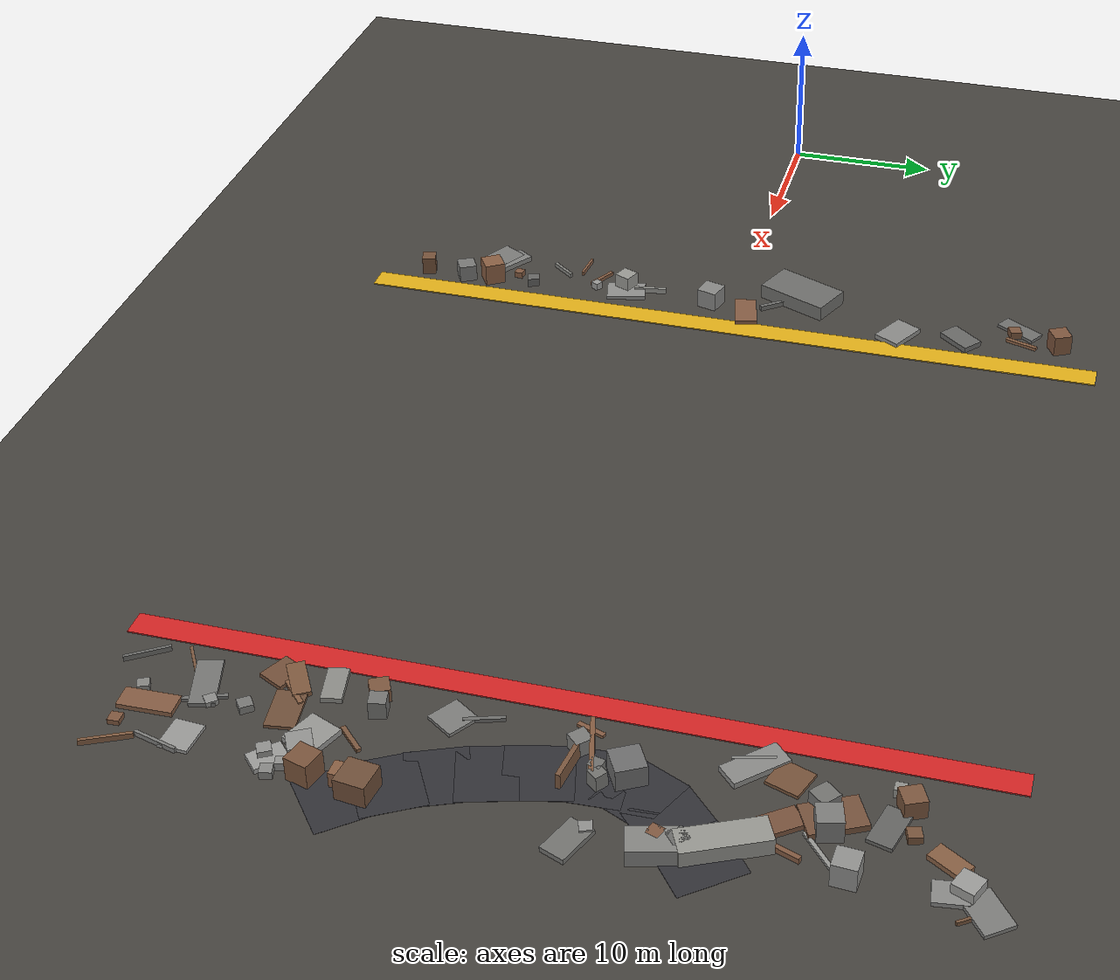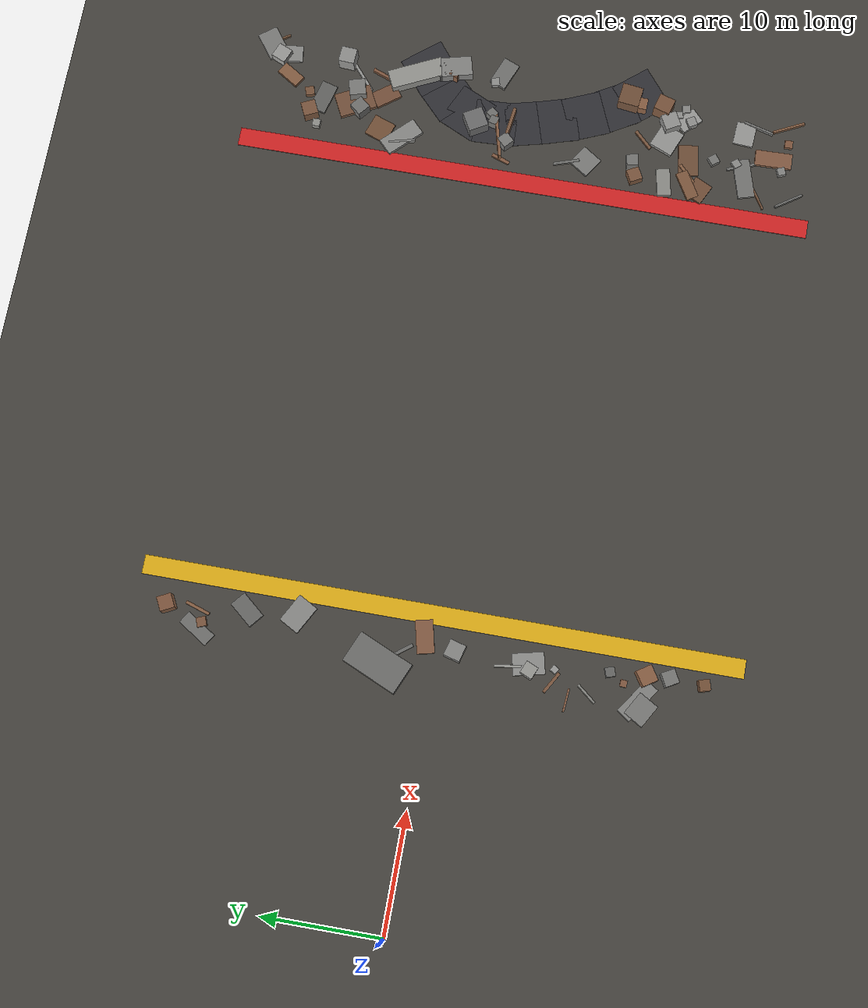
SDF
<sdf version="1.6">
 <world name="navitas_arena">
  <model name="ground_plane">
   <static>true</static>
   <link name="link">
    <collision name="collision">
     <geometry><plane><normal>0 0 1</normal><size>400 400</size></plane></geometry>
     <surface><friction><ode><mu>0.820</mu><mu2>0.820</mu2></ode></friction></surface>
    </collision>
    <visual name="visual">
     <cast_shadows>false</cast_shadows>
     <geometry><plane><normal>0 0 1</normal><size>400 400</size></plane></geometry>
     <material><ambient>0.280 0.270 0.250 1</ambient><diffuse>0.280 0.270 0.250 1</diffuse></material>
    </visual>
   </link>
  </model>
  <model name="brd_orta_E">
   <static>true</static>
   <pose>25.800 0.000 0.040 0 0 0.000</pose>
   <link name="link">
    <collision name="col"><geometry><box><size>1.600 50.000 0.080</size></box></geometry></collision>
    <visual name="vis">
     <geometry><box><size>1.600 50.000 0.080</size></box></geometry>
     <material><ambient>0.90 0.70 0.10 1</ambient><diffuse>0.90 0.70 0.10 1</diffuse></material>
    </visual>
   </link>
  </model>
  <model name="blk_orta_3_1_3">
   <static>true</static>
   <pose>21.097 4.455 0.500 0 0 1.163</pose>
   <link name="link">
    <collision name="col"><geometry><box><size>4.969 2.766 1.000</size></box></geometry></collision>
    <visual name="vis">
     <geometry><box><size>4.969 2.766 1.000</size></box></geometry>
     <material><ambient>0.44 0.44 0.43 1</ambient><diffuse>0.44 0.44 0.43 1</diffuse></material>
    </visual>
   </link>
  </model>
  <model name="deb_orta_9">
   <static>true</static>
   <pose>22.989 19.816 0.109 0 0 1.255</pose>
   <link name="link">
    <collision name="col"><geometry><box><size>2.165 0.266 0.217</size></box></geometry></collision>
    <visual name="vis">
     <geometry><box><size>2.165 0.266 0.217</size></box></geometry>
     <material><ambient>0.54 0.38 0.27 1</ambient><diffuse>0.54 0.38 0.27 1</diffuse></material>
    </visual>
   </link>
  </model>
  <model name="deb_orta_18">
   <static>true</static>
   <pose>22.705 -5.974 0.182 0 0 1.719</pose>
   <link name="link">
    <collision name="col"><geometry><box><size>2.216 0.202 0.365</size></box></geometry></collision>
    <visual name="vis">
     <geometry><box><size>2.216 0.202 0.365</size></box></geometry>
     <material><ambient>0.61 0.61 0.59 1</ambient><diffuse>0.61 0.61 0.59 1</diffuse></material>
    </visual>
   </link>
  </model>
  <model name="deb_orta_24">
   <static>true</static>
   <pose>21.910 19.250 0.246 0 0 0.372</pose>
   <link name="link">
    <collision name="col"><geometry><box><size>0.781 0.781 0.492</size></box></geometry></collision>
    <visual name="vis">
     <geometry><box><size>0.781 0.781 0.492</size></box></geometry>
     <material><ambient>0.50 0.35 0.25 1</ambient><diffuse>0.50 0.35 0.25 1</diffuse></material>
    </visual>
   </link>
  </model>
  <model name="deb_orta_30">
   <static>true</static>
   <pose>23.120 -1.546 0.655 0 0 1.302</pose>
   <link name="link">
    <collision name="col"><geometry><box><size>1.401 1.401 1.310</size></box></geometry></collision>
    <visual name="vis">
     <geometry><box><size>1.401 1.401 1.310</size></box></geometry>
     <material><ambient>0.54 0.54 0.53 1</ambient><diffuse>0.54 0.54 0.53 1</diffuse></material>
    </visual>
   </link>
  </model>
  <model name="deb_orta_58">
   <static>true</static>
   <pose>21.587 -12.601 0.144 0 0 0.895</pose>
   <link name="link">
    <collision name="col"><geometry><box><size>1.929 0.205 0.289</size></box></geometry></collision>
    <visual name="vis">
     <geometry><box><size>1.929 0.205 0.289</size></box></geometry>
     <material><ambient>0.53 0.53 0.51 1</ambient><diffuse>0.53 0.53 0.51 1</diffuse></material>
    </visual>
   </link>
  </model>
  <model name="deb_orta_77">
   <static>true</static>
   <pose>23.777 -17.120 0.743 0 0 2.150</pose>
   <link name="link">
    <collision name="col"><geometry><box><size>1.371 1.371 1.485</size></box></geometry></collision>
    <visual name="vis">
     <geometry><box><size>1.371 1.371 1.485</size></box></geometry>
     <material><ambient>0.55 0.38 0.27 1</ambient><diffuse>0.55 0.38 0.27 1</diffuse></material>
    </visual>
   </link>
  </model>
  <model name="deb_orta_91">
   <static>true</static>
   <pose>23.874 1.089 0.187 0 0 0.233</pose>
   <link name="link">
    <collision name="col"><geometry><box><size>2.739 1.456 0.375</size></box></geometry></collision>
    <visual name="vis">
     <geometry><box><size>2.739 1.456 0.375</size></box></geometry>
     <material><ambient>0.53 0.37 0.27 1</ambient><diffuse>0.53 0.37 0.27 1</diffuse></material>
    </visual>
   </link>
  </model>
  <model name="deb_orta_94">
   <static>true</static>
   <pose>23.519 15.789 0.183 0 0 0.878</pose>
   <link name="link">
    <collision name="col"><geometry><box><size>2.447 1.444 0.366</size></box></geometry></collision>
    <visual name="vis">
     <geometry><box><size>2.447 1.444 0.366</size></box></geometry>
     <material><ambient>0.42 0.42 0.41 1</ambient><diffuse>0.42 0.42 0.41 1</diffuse></material>
    </visual>
   </link>
  </model>
  <model name="deb_orta_96">
   <static>true</static>
   <pose>23.650 -14.196 0.288 0 0 0.324</pose>
   <link name="link">
    <collision name="col"><geometry><box><size>0.787 0.787 0.575</size></box></geometry></collision>
    <visual name="vis">
     <geometry><box><size>0.787 0.787 0.575</size></box></geometry>
     <material><ambient>0.41 0.41 0.40 1</ambient><diffuse>0.41 0.41 0.40 1</diffuse></material>
    </visual>
   </link>
  </model>
  <model name="deb_orta_99">
   <static>true</static>
   <pose>23.845 -21.818 0.626 0 0 1.858</pose>
   <link name="link">
    <collision name="col"><geometry><box><size>0.919 0.919 1.252</size></box></geometry></collision>
    <visual name="vis">
     <geometry><box><size>0.919 0.919 1.252</size></box></geometry>
     <material><ambient>0.47 0.33 0.23 1</ambient><diffuse>0.47 0.33 0.23 1</diffuse></material>
    </visual>
   </link>
  </model>
  <model name="deb_orta_123">
   <static>true</static>
   <pose>22.331 2.882 0.167 0 0 2.226</pose>
   <link name="link">
    <collision name="col"><geometry><box><size>2.357 0.276 0.334</size></box></geometry></collision>
    <visual name="vis">
     <geometry><box><size>2.357 0.276 0.334</size></box></geometry>
     <material><ambient>0.43 0.43 0.42 1</ambient><diffuse>0.43 0.43 0.42 1</diffuse></material>
    </visual>
   </link>
  </model>
  <model name="deb_orta_126">
   <static>true</static>
   <pose>22.933 -15.426 0.214 0 0 3.069</pose>
   <link name="link">
    <collision name="col"><geometry><box><size>0.551 0.551 0.427</size></box></geometry></collision>
    <visual name="vis">
     <geometry><box><size>0.551 0.551 0.427</size></box></geometry>
     <material><ambient>0.52 0.36 0.26 1</ambient><diffuse>0.52 0.36 0.26 1</diffuse></material>
    </visual>
   </link>
  </model>
  <model name="deb_orta_131">
   <static>true</static>
   <pose>21.089 -17.134 0.179 0 0 1.045</pose>
   <link name="link">
    <collision name="col"><geometry><box><size>1.829 2.114 0.359</size></box></geometry></collision>
    <visual name="vis">
     <geometry><box><size>1.829 2.114 0.359</size></box></geometry>
     <material><ambient>0.49 0.49 0.48 1</ambient><diffuse>0.49 0.49 0.48 1</diffuse></material>
    </visual>
   </link>
  </model>
  <model name="deb_orta_134">
   <static>true</static>
   <pose>23.069 -9.728 0.239 0 0 2.543</pose>
   <link name="link">
    <collision name="col"><geometry><box><size>0.538 0.538 0.479</size></box></geometry></collision>
    <visual name="vis">
     <geometry><box><size>0.538 0.538 0.479</size></box></geometry>
     <material><ambient>0.61 0.61 0.60 1</ambient><diffuse>0.61 0.61 0.60 1</diffuse></material>
    </visual>
   </link>
  </model>
  <model name="deb_orta_135">
   <static>true</static>
   <pose>22.893 22.286 0.680 0 0 0.474</pose>
   <link name="link">
    <collision name="col"><geometry><box><size>1.216 1.216 1.361</size></box></geometry></collision>
    <visual name="vis">
     <geometry><box><size>1.216 1.216 1.361</size></box></geometry>
     <material><ambient>0.51 0.35 0.25 1</ambient><diffuse>0.51 0.35 0.25 1</diffuse></material>
    </visual>
   </link>
  </model>
  <model name="deb_orta_137">
   <static>true</static>
   <pose>20.813 -11.068 0.148 0 0 3.054</pose>
   <link name="link">
    <collision name="col"><geometry><box><size>1.906 0.152 0.297</size></box></geometry></collision>
    <visual name="vis">
     <geometry><box><size>1.906 0.152 0.297</size></box></geometry>
     <material><ambient>0.53 0.37 0.27 1</ambient><diffuse>0.53 0.37 0.27 1</diffuse></material>
    </visual>
   </link>
  </model>
  <model name="deb_orta_150">
   <static>true</static>
   <pose>23.906 11.586 0.172 0 0 2.644</pose>
   <link name="link">
    <collision name="col"><geometry><box><size>2.581 1.828 0.345</size></box></geometry></collision>
    <visual name="vis">
     <geometry><box><size>2.581 1.828 0.345</size></box></geometry>
     <material><ambient>0.55 0.55 0.54 1</ambient><diffuse>0.55 0.55 0.54 1</diffuse></material>
    </visual>
   </link>
  </model>
  <model name="deb_orta_152">
   <static>true</static>
   <pose>21.794 -16.767 0.174 0 0 2.541</pose>
   <link name="link">
    <collision name="col"><geometry><box><size>3.456 1.294 0.348</size></box></geometry></collision>
    <visual name="vis">
     <geometry><box><size>3.456 1.294 0.348</size></box></geometry>
     <material><ambient>0.52 0.52 0.51 1</ambient><diffuse>0.52 0.52 0.51 1</diffuse></material>
    </visual>
   </link>
  </model>
  <model name="deb_orta_164">
   <static>true</static>
   <pose>22.003 -9.675 0.126 0 0 2.612</pose>
   <link name="link">
    <collision name="col"><geometry><box><size>1.997 0.253 0.251</size></box></geometry></collision>
    <visual name="vis">
     <geometry><box><size>1.997 0.253 0.251</size></box></geometry>
     <material><ambient>0.50 0.35 0.25 1</ambient><diffuse>0.50 0.35 0.25 1</diffuse></material>
    </visual>
   </link>
  </model>
  <model name="deb_orta_166">
   <static>true</static>
   <pose>23.960 -19.000 0.569 0 0 0.499</pose>
   <link name="link">
    <collision name="col"><geometry><box><size>1.185 1.185 1.138</size></box></geometry></collision>
    <visual name="vis">
     <geometry><box><size>1.185 1.185 1.138</size></box></geometry>
     <material><ambient>0.48 0.48 0.47 1</ambient><diffuse>0.48 0.48 0.47 1</diffuse></material>
    </visual>
   </link>
  </model>
  <model name="deb_orta_168">
   <static>true</static>
   <pose>23.183 -7.585 0.124 0 0 1.797</pose>
   <link name="link">
    <collision name="col"><geometry><box><size>2.626 1.812 0.248</size></box></geometry></collision>
    <visual name="vis">
     <geometry><box><size>2.626 1.812 0.248</size></box></geometry>
     <material><ambient>0.57 0.57 0.56 1</ambient><diffuse>0.57 0.57 0.56 1</diffuse></material>
    </visual>
   </link>
  </model>
  <model name="deb_orta_172">
   <static>true</static>
   <pose>21.319 19.522 0.103 0 0 1.007</pose>
   <link name="link">
    <collision name="col"><geometry><box><size>2.890 1.153 0.207</size></box></geometry></collision>
    <visual name="vis">
     <geometry><box><size>2.890 1.153 0.207</size></box></geometry>
     <material><ambient>0.45 0.45 0.44 1</ambient><diffuse>0.45 0.45 0.44 1</diffuse></material>
    </visual>
   </link>
  </model>
  <model name="deb_orta_189">
   <static>true</static>
   <pose>22.607 -7.715 0.598 0 0 1.163</pose>
   <link name="link">
    <collision name="col"><geometry><box><size>1.089 1.089 1.196</size></box></geometry></collision>
    <visual name="vis">
     <geometry><box><size>1.089 1.089 1.196</size></box></geometry>
     <material><ambient>0.61 0.61 0.59 1</ambient><diffuse>0.61 0.61 0.59 1</diffuse></material>
    </visual>
   </link>
  </model>
  <model name="brd_zor_W">
   <static>true</static>
   <pose>64.200 0.000 0.040 0 0 0.000</pose>
   <link name="link">
    <collision name="col"><geometry><box><size>1.600 50.000 0.080</size></box></geometry></collision>
    <visual name="vis">
     <geometry><box><size>1.600 50.000 0.080</size></box></geometry>
     <material><ambient>0.85 0.15 0.15 1</ambient><diffuse>0.85 0.15 0.15 1</diffuse></material>
    </visual>
   </link>
  </model>
  <model name="road_zor_1_6">
   <static>true</static>
   <pose>74.001 -9.036 0.040 0 0 2.261</pose>
   <link name="link">
    <collision name="col"><geometry><box><size>3.588 4.000 0.020</size></box></geometry></collision>
    <visual name="vis">
     <geometry><box><size>3.588 4.000 0.020</size></box></geometry>
     <material><ambient>0.20 0.20 0.22 1</ambient><diffuse>0.20 0.20 0.22 1</diffuse></material>
    </visual>
   </link>
  </model>
  <model name="road_zor_1_7">
   <static>true</static>
   <pose>72.464 -6.833 0.040 0 0 2.099</pose>
   <link name="link">
    <collision name="col"><geometry><box><size>3.601 4.000 0.020</size></box></geometry></collision>
    <visual name="vis">
     <geometry><box><size>3.601 4.000 0.020</size></box></geometry>
     <material><ambient>0.20 0.20 0.22 1</ambient><diffuse>0.20 0.20 0.22 1</diffuse></material>
    </visual>
   </link>
  </model>
  <model name="road_zor_1_8">
   <static>true</static>
   <pose>71.287 -4.500 0.040 0 0 1.974</pose>
   <link name="link">
    <collision name="col"><geometry><box><size>3.437 4.000 0.020</size></box></geometry></collision>
    <visual name="vis">
     <geometry><box><size>3.437 4.000 0.020</size></box></geometry>
     <material><ambient>0.20 0.20 0.22 1</ambient><diffuse>0.20 0.20 0.22 1</diffuse></material>
    </visual>
   </link>
  </model>
  <model name="road_zor_1_9">
   <static>true</static>
   <pose>70.440 -2.167 0.040 0 0 1.862</pose>
   <link name="link">
    <collision name="col"><geometry><box><size>3.336 4.000 0.020</size></box></geometry></collision>
    <visual name="vis">
     <geometry><box><size>3.336 4.000 0.020</size></box></geometry>
     <material><ambient>0.20 0.20 0.22 1</ambient><diffuse>0.20 0.20 0.22 1</diffuse></material>
    </visual>
   </link>
  </model>
  <model name="road_zor_1_10">
   <static>true</static>
   <pose>69.736 0.400 0.040 0 0 1.819</pose>
   <link name="link">
    <collision name="col"><geometry><box><size>3.789 4.000 0.020</size></box></geometry></collision>
    <visual name="vis">
     <geometry><box><size>3.789 4.000 0.020</size></box></geometry>
     <material><ambient>0.20 0.20 0.22 1</ambient><diffuse>0.20 0.20 0.22 1</diffuse></material>
    </visual>
   </link>
  </model>
  <model name="road_zor_1_11">
   <static>true</static>
   <pose>69.319 3.200 0.040 0 0 1.615</pose>
   <link name="link">
    <collision name="col"><geometry><box><size>3.703 4.000 0.020</size></box></geometry></collision>
    <visual name="vis">
     <geometry><box><size>3.703 4.000 0.020</size></box></geometry>
     <material><ambient>0.20 0.20 0.22 1</ambient><diffuse>0.20 0.20 0.22 1</diffuse></material>
    </visual>
   </link>
  </model>
  <model name="road_zor_1_12">
   <static>true</static>
   <pose>69.785 5.746 0.040 0 0 1.140</pose>
   <link name="link">
    <collision name="col"><geometry><box><size>3.423 4.000 0.020</size></box></geometry></collision>
    <visual name="vis">
     <geometry><box><size>3.423 4.000 0.020</size></box></geometry>
     <material><ambient>0.20 0.20 0.22 1</ambient><diffuse>0.20 0.20 0.22 1</diffuse></material>
    </visual>
   </link>
  </model>
  <model name="road_zor_1_13">
   <static>true</static>
   <pose>71.271 7.813 0.040 0 0 0.765</pose>
   <link name="link">
    <collision name="col"><geometry><box><size>3.560 4.000 0.020</size></box></geometry></collision>
    <visual name="vis">
     <geometry><box><size>3.560 4.000 0.020</size></box></geometry>
     <material><ambient>0.20 0.20 0.22 1</ambient><diffuse>0.20 0.20 0.22 1</diffuse></material>
    </visual>
   </link>
  </model>
  <model name="road_zor_1_14">
   <static>true</static>
   <pose>73.368 9.646 0.040 0 0 0.676</pose>
   <link name="link">
    <collision name="col"><geometry><box><size>3.815 4.000 0.020</size></box></geometry></collision>
    <visual name="vis">
     <geometry><box><size>3.815 4.000 0.020</size></box></geometry>
     <material><ambient>0.20 0.20 0.22 1</ambient><diffuse>0.20 0.20 0.22 1</diffuse></material>
    </visual>
   </link>
  </model>
  <model name="blk_zor_1_0_1">
   <static>true</static>
   <pose>72.960 -11.120 0.765 0 0 2.855</pose>
   <link name="link">
    <collision name="col"><geometry><box><size>1.432 1.432 1.530</size></box></geometry></collision>
    <visual name="vis">
     <geometry><box><size>1.432 1.432 1.530</size></box></geometry>
     <material><ambient>0.49 0.34 0.24 1</ambient><diffuse>0.49 0.34 0.24 1</diffuse></material>
    </visual>
   </link>
  </model>
  <model name="blk_zor_1_0_2">
   <static>true</static>
   <pose>73.348 -8.086 0.695 0 0 1.446</pose>
   <link name="link">
    <collision name="col"><geometry><box><size>1.811 1.811 1.391</size></box></geometry></collision>
    <visual name="vis">
     <geometry><box><size>1.811 1.811 1.391</size></box></geometry>
     <material><ambient>0.45 0.32 0.23 1</ambient><diffuse>0.45 0.32 0.23 1</diffuse></material>
    </visual>
   </link>
  </model>
  <model name="blk_zor_1_0_3">
   <static>true</static>
   <pose>72.916 -9.137 0.500 0 0 3.107</pose>
   <link name="link">
    <collision name="col"><geometry><box><size>1.023 1.023 1.000</size></box></geometry></collision>
    <visual name="vis">
     <geometry><box><size>1.023 1.023 1.000</size></box></geometry>
     <material><ambient>0.55 0.38 0.27 1</ambient><diffuse>0.55 0.38 0.27 1</diffuse></material>
    </visual>
   </link>
  </model>
  <model name="blk_zor_1_1_0">
   <static>true</static>
   <pose>69.776 3.532 0.500 0 0 2.495</pose>
   <link name="link">
    <collision name="col"><geometry><box><size>0.776 0.776 1.000</size></box></geometry></collision>
    <visual name="vis">
     <geometry><box><size>0.776 0.776 1.000</size></box></geometry>
     <material><ambient>0.46 0.46 0.45 1</ambient><diffuse>0.46 0.46 0.45 1</diffuse></material>
    </visual>
   </link>
  </model>
  <model name="blk_zor_1_1_1">
   <static>true</static>
   <pose>67.524 1.985 0.500 0 0 0.808</pose>
   <link name="link">
    <collision name="col"><geometry><box><size>1.028 1.028 1.000</size></box></geometry></collision>
    <visual name="vis">
     <geometry><box><size>1.028 1.028 1.000</size></box></geometry>
     <material><ambient>0.49 0.49 0.48 1</ambient><diffuse>0.49 0.49 0.48 1</diffuse></material>
    </visual>
   </link>
  </model>
  <model name="blk_zor_1_1_2">
   <static>true</static>
   <pose>67.938 2.735 0.500 0 0 0.251</pose>
   <link name="link">
    <collision name="col"><geometry><box><size>4.023 0.253 1.000</size></box></geometry></collision>
    <visual name="vis">
     <geometry><box><size>4.023 0.253 1.000</size></box></geometry>
     <material><ambient>0.53 0.37 0.26 1</ambient><diffuse>0.53 0.37 0.26 1</diffuse></material>
    </visual>
   </link>
  </model>
  <model name="blk_zor_1_1_3">
   <static>true</static>
   <pose>68.822 4.860 0.679 0 0 0.519</pose>
   <link name="link">
    <collision name="col"><geometry><box><size>1.750 1.750 1.358</size></box></geometry></collision>
    <visual name="vis">
     <geometry><box><size>1.750 1.750 1.358</size></box></geometry>
     <material><ambient>0.44 0.44 0.44 1</ambient><diffuse>0.44 0.44 0.44 1</diffuse></material>
    </visual>
   </link>
  </model>
  <model name="blk_zor_1_1_4">
   <static>true</static>
   <pose>69.165 3.311 0.500 0 0 1.337</pose>
   <link name="link">
    <collision name="col"><geometry><box><size>0.737 0.737 1.000</size></box></geometry></collision>
    <visual name="vis">
     <geometry><box><size>0.737 0.737 1.000</size></box></geometry>
     <material><ambient>0.45 0.45 0.44 1</ambient><diffuse>0.45 0.45 0.44 1</diffuse></material>
    </visual>
   </link>
  </model>
  <model name="blk_zor_1_1_5">
   <static>true</static>
   <pose>69.316 1.828 0.500 0 0 3.005</pose>
   <link name="link">
    <collision name="col"><geometry><box><size>2.487 0.274 1.000</size></box></geometry></collision>
    <visual name="vis">
     <geometry><box><size>2.487 0.274 1.000</size></box></geometry>
     <material><ambient>0.49 0.35 0.25 1</ambient><diffuse>0.49 0.35 0.25 1</diffuse></material>
    </visual>
   </link>
  </model>
  <model name="blk_zor_1_2_1">
   <static>true</static>
   <pose>72.973 7.406 0.500 0 0 2.788</pose>
   <link name="link">
    <collision name="col"><geometry><box><size>0.774 0.774 1.000</size></box></geometry></collision>
    <visual name="vis">
     <geometry><box><size>0.774 0.774 1.000</size></box></geometry>
     <material><ambient>0.52 0.36 0.26 1</ambient><diffuse>0.52 0.36 0.26 1</diffuse></material>
    </visual>
   </link>
  </model>
  <model name="blk_zor_1_2_2">
   <static>true</static>
   <pose>72.380 10.707 0.500 0 0 2.020</pose>
   <link name="link">
    <collision name="col"><geometry><box><size>4.876 1.695 1.000</size></box></geometry></collision>
    <visual name="vis">
     <geometry><box><size>4.876 1.695 1.000</size></box></geometry>
     <material><ambient>0.60 0.60 0.58 1</ambient><diffuse>0.60 0.60 0.58 1</diffuse></material>
    </visual>
   </link>
  </model>
  <model name="blk_zor_1_2_3">
   <static>true</static>
   <pose>73.007 8.545 0.500 0 0 0.701</pose>
   <link name="link">
    <collision name="col"><geometry><box><size>0.999 0.999 1.000</size></box></geometry></collision>
    <visual name="vis">
     <geometry><box><size>0.999 0.999 1.000</size></box></geometry>
     <material><ambient>0.43 0.43 0.42 1</ambient><diffuse>0.43 0.43 0.42 1</diffuse></material>
    </visual>
   </link>
  </model>
  <model name="blk_zor_1_2_4">
   <static>true</static>
   <pose>73.558 7.384 0.500 0 0 1.823</pose>
   <link name="link">
    <collision name="col"><geometry><box><size>2.696 1.752 1.000</size></box></geometry></collision>
    <visual name="vis">
     <geometry><box><size>2.696 1.752 1.000</size></box></geometry>
     <material><ambient>0.53 0.53 0.52 1</ambient><diffuse>0.53 0.53 0.52 1</diffuse></material>
    </visual>
   </link>
  </model>
  <model name="deb_zor_1">
   <static>true</static>
   <pose>73.958 3.160 0.155 0 0 2.757</pose>
   <link name="link">
    <collision name="col"><geometry><box><size>2.534 1.511 0.310</size></box></geometry></collision>
    <visual name="vis">
     <geometry><box><size>2.534 1.511 0.310</size></box></geometry>
     <material><ambient>0.46 0.46 0.45 1</ambient><diffuse>0.46 0.46 0.45 1</diffuse></material>
    </visual>
   </link>
  </model>
  <model name="deb_zor_10">
   <static>true</static>
   <pose>66.108 10.919 0.185 0 0 1.814</pose>
   <link name="link">
    <collision name="col"><geometry><box><size>2.341 0.170 0.370</size></box></geometry></collision>
    <visual name="vis">
     <geometry><box><size>2.341 0.170 0.370</size></box></geometry>
     <material><ambient>0.53 0.53 0.52 1</ambient><diffuse>0.53 0.53 0.52 1</diffuse></material>
    </visual>
   </link>
  </model>
  <model name="deb_zor_11">
   <static>true</static>
   <pose>67.848 -18.932 0.119 0 0 0.278</pose>
   <link name="link">
    <collision name="col"><geometry><box><size>3.491 1.452 0.238</size></box></geometry></collision>
    <visual name="vis">
     <geometry><box><size>3.491 1.452 0.238</size></box></geometry>
     <material><ambient>0.47 0.47 0.46 1</ambient><diffuse>0.47 0.47 0.46 1</diffuse></material>
    </visual>
   </link>
  </model>
  <model name="deb_zor_13">
   <static>true</static>
   <pose>73.186 -22.201 0.173 0 0 2.026</pose>
   <link name="link">
    <collision name="col"><geometry><box><size>2.871 0.189 0.346</size></box></geometry></collision>
    <visual name="vis">
     <geometry><box><size>2.871 0.189 0.346</size></box></geometry>
     <material><ambient>0.52 0.37 0.26 1</ambient><diffuse>0.52 0.37 0.26 1</diffuse></material>
    </visual>
   </link>
  </model>
  <model name="deb_zor_16">
   <static>true</static>
   <pose>67.439 19.321 0.572 0 0 0.444</pose>
   <link name="link">
    <collision name="col"><geometry><box><size>1.267 1.267 1.143</size></box></geometry></collision>
    <visual name="vis">
     <geometry><box><size>1.267 1.267 1.143</size></box></geometry>
     <material><ambient>0.50 0.35 0.25 1</ambient><diffuse>0.50 0.35 0.25 1</diffuse></material>
    </visual>
   </link>
  </model>
  <model name="deb_zor_28">
   <static>true</static>
   <pose>66.377 -14.190 0.150 0 0 0.536</pose>
   <link name="link">
    <collision name="col"><geometry><box><size>2.557 1.039 0.300</size></box></geometry></collision>
    <visual name="vis">
     <geometry><box><size>2.557 1.039 0.300</size></box></geometry>
     <material><ambient>0.51 0.36 0.25 1</ambient><diffuse>0.51 0.36 0.25 1</diffuse></material>
    </visual>
   </link>
  </model>
  <model name="deb_zor_29">
   <static>true</static>
   <pose>73.324 -13.101 0.223 0 0 0.247</pose>
   <link name="link">
    <collision name="col"><geometry><box><size>0.703 0.703 0.445</size></box></geometry></collision>
    <visual name="vis">
     <geometry><box><size>0.703 0.703 0.445</size></box></geometry>
     <material><ambient>0.54 0.54 0.53 1</ambient><diffuse>0.54 0.54 0.53 1</diffuse></material>
    </visual>
   </link>
  </model>
  <model name="deb_zor_32">
   <static>true</static>
   <pose>71.499 15.356 0.082 0 0 0.711</pose>
   <link name="link">
    <collision name="col"><geometry><box><size>2.885 0.243 0.165</size></box></geometry></collision>
    <visual name="vis">
     <geometry><box><size>2.885 0.243 0.165</size></box></geometry>
     <material><ambient>0.60 0.60 0.59 1</ambient><diffuse>0.60 0.60 0.59 1</diffuse></material>
    </visual>
   </link>
  </model>
  <model name="deb_zor_34">
   <static>true</static>
   <pose>69.069 -18.124 0.157 0 0 2.246</pose>
   <link name="link">
    <collision name="col"><geometry><box><size>0.684 0.684 0.313</size></box></geometry></collision>
    <visual name="vis">
     <geometry><box><size>0.684 0.684 0.313</size></box></geometry>
     <material><ambient>0.56 0.56 0.55 1</ambient><diffuse>0.56 0.56 0.55 1</diffuse></material>
    </visual>
   </link>
  </model>
  <model name="deb_zor_38">
   <static>true</static>
   <pose>67.049 -5.162 0.105 0 0 0.986</pose>
   <link name="link">
    <collision name="col"><geometry><box><size>1.899 1.951 0.209</size></box></geometry></collision>
    <visual name="vis">
     <geometry><box><size>1.899 1.951 0.209</size></box></geometry>
     <material><ambient>0.50 0.50 0.49 1</ambient><diffuse>0.50 0.50 0.49 1</diffuse></material>
    </visual>
   </link>
  </model>
  <model name="deb_zor_39">
   <static>true</static>
   <pose>69.039 18.451 0.114 0 0 2.881</pose>
   <link name="link">
    <collision name="col"><geometry><box><size>2.701 1.447 0.228</size></box></geometry></collision>
    <visual name="vis">
     <geometry><box><size>2.701 1.447 0.228</size></box></geometry>
     <material><ambient>0.40 0.40 0.39 1</ambient><diffuse>0.40 0.40 0.39 1</diffuse></material>
    </visual>
   </link>
  </model>
  <model name="deb_zor_46">
   <static>true</static>
   <pose>68.691 -13.966 0.101 0 0 0.132</pose>
   <link name="link">
    <collision name="col"><geometry><box><size>2.791 1.724 0.202</size></box></geometry></collision>
    <visual name="vis">
     <geometry><box><size>2.791 1.724 0.202</size></box></geometry>
     <material><ambient>0.45 0.32 0.23 1</ambient><diffuse>0.45 0.32 0.23 1</diffuse></material>
    </visual>
   </link>
  </model>
  <model name="deb_zor_51">
   <static>true</static>
   <pose>72.606 21.986 0.137 0 0 1.696</pose>
   <link name="link">
    <collision name="col"><geometry><box><size>1.895 1.481 0.274</size></box></geometry></collision>
    <visual name="vis">
     <geometry><box><size>1.895 1.481 0.274</size></box></geometry>
     <material><ambient>0.55 0.55 0.54 1</ambient><diffuse>0.55 0.55 0.54 1</diffuse></material>
    </visual>
   </link>
  </model>
  <model name="deb_zor_53">
   <static>true</static>
   <pose>72.991 3.825 0.213 0 0 1.868</pose>
   <link name="link">
    <collision name="col"><geometry><box><size>0.701 0.701 0.426</size></box></geometry></collision>
    <visual name="vis">
     <geometry><box><size>0.701 0.701 0.426</size></box></geometry>
     <material><ambient>0.58 0.58 0.57 1</ambient><diffuse>0.58 0.58 0.57 1</diffuse></material>
    </visual>
   </link>
  </model>
  <model name="deb_zor_60">
   <static>true</static>
   <pose>66.915 -13.960 0.089 0 0 0.220</pose>
   <link name="link">
    <collision name="col"><geometry><box><size>2.098 0.240 0.178</size></box></geometry></collision>
    <visual name="vis">
     <geometry><box><size>2.098 0.240 0.178</size></box></geometry>
     <material><ambient>0.45 0.32 0.23 1</ambient><diffuse>0.45 0.32 0.23 1</diffuse></material>
    </visual>
   </link>
  </model>
  <model name="deb_zor_63">
   <static>true</static>
   <pose>71.674 -11.888 0.610 0 0 2.066</pose>
   <link name="link">
    <collision name="col"><geometry><box><size>1.380 1.380 1.220</size></box></geometry></collision>
    <visual name="vis">
     <geometry><box><size>1.380 1.380 1.220</size></box></geometry>
     <material><ambient>0.59 0.59 0.58 1</ambient><diffuse>0.59 0.59 0.58 1</diffuse></material>
    </visual>
   </link>
  </model>
  <model name="deb_zor_66">
   <static>true</static>
   <pose>69.100 15.612 0.194 0 0 2.042</pose>
   <link name="link">
    <collision name="col"><geometry><box><size>3.251 2.164 0.388</size></box></geometry></collision>
    <visual name="vis">
     <geometry><box><size>3.251 2.164 0.388</size></box></geometry>
     <material><ambient>0.47 0.33 0.24 1</ambient><diffuse>0.47 0.33 0.24 1</diffuse></material>
    </visual>
   </link>
  </model>
  <model name="deb_zor_68">
   <static>true</static>
   <pose>73.828 23.225 0.121 0 0 2.171</pose>
   <link name="link">
    <collision name="col"><geometry><box><size>1.806 0.159 0.242</size></box></geometry></collision>
    <visual name="vis">
     <geometry><box><size>1.806 0.159 0.242</size></box></geometry>
     <material><ambient>0.46 0.33 0.23 1</ambient><diffuse>0.46 0.33 0.23 1</diffuse></material>
    </visual>
   </link>
  </model>
  <model name="deb_zor_74">
   <static>true</static>
   <pose>72.332 -13.465 0.156 0 0 2.337</pose>
   <link name="link">
    <collision name="col"><geometry><box><size>1.985 1.352 0.312</size></box></geometry></collision>
    <visual name="vis">
     <geometry><box><size>1.985 1.352 0.312</size></box></geometry>
     <material><ambient>0.62 0.62 0.61 1</ambient><diffuse>0.62 0.62 0.61 1</diffuse></material>
    </visual>
   </link>
  </model>
  <model name="deb_zor_75">
   <static>true</static>
   <pose>66.447 18.573 0.266 0 0 1.546</pose>
   <link name="link">
    <collision name="col"><geometry><box><size>0.648 0.648 0.532</size></box></geometry></collision>
    <visual name="vis">
     <geometry><box><size>0.648 0.648 0.532</size></box></geometry>
     <material><ambient>0.58 0.58 0.56 1</ambient><diffuse>0.58 0.58 0.56 1</diffuse></material>
    </visual>
   </link>
  </model>
  <model name="deb_zor_76">
   <static>true</static>
   <pose>66.933 12.996 0.106 0 0 2.803</pose>
   <link name="link">
    <collision name="col"><geometry><box><size>1.919 1.992 0.211</size></box></geometry></collision>
    <visual name="vis">
     <geometry><box><size>1.919 1.992 0.211</size></box></geometry>
     <material><ambient>0.47 0.33 0.23 1</ambient><diffuse>0.47 0.33 0.23 1</diffuse></material>
    </visual>
   </link>
  </model>
  <model name="deb_zor_81">
   <static>true</static>
   <pose>72.782 16.919 0.722 0 0 1.507</pose>
   <link name="link">
    <collision name="col"><geometry><box><size>1.381 1.381 1.445</size></box></geometry></collision>
    <visual name="vis">
     <geometry><box><size>1.381 1.381 1.445</size></box></geometry>
     <material><ambient>0.58 0.58 0.57 1</ambient><diffuse>0.58 0.58 0.57 1</diffuse></material>
    </visual>
   </link>
  </model>
  <model name="deb_zor_86">
   <static>true</static>
   <pose>67.544 -9.146 0.547 0 0 0.209</pose>
   <link name="link">
    <collision name="col"><geometry><box><size>0.995 0.995 1.094</size></box></geometry></collision>
    <visual name="vis">
     <geometry><box><size>0.995 0.995 1.094</size></box></geometry>
     <material><ambient>0.47 0.47 0.46 1</ambient><diffuse>0.47 0.47 0.46 1</diffuse></material>
    </visual>
   </link>
  </model>
  <model name="deb_zor_89">
   <static>true</static>
   <pose>72.121 -13.719 0.334 0 0 0.509</pose>
   <link name="link">
    <collision name="col"><geometry><box><size>0.788 0.788 0.668</size></box></geometry></collision>
    <visual name="vis">
     <geometry><box><size>0.788 0.788 0.668</size></box></geometry>
     <material><ambient>0.58 0.58 0.57 1</ambient><diffuse>0.58 0.58 0.57 1</diffuse></material>
    </visual>
   </link>
  </model>
  <model name="deb_zor_93">
   <static>true</static>
   <pose>67.408 -14.024 0.136 0 0 0.763</pose>
   <link name="link">
    <collision name="col"><geometry><box><size>1.998 0.286 0.272</size></box></geometry></collision>
    <visual name="vis">
     <geometry><box><size>1.998 0.286 0.272</size></box></geometry>
     <material><ambient>0.54 0.38 0.27 1</ambient><diffuse>0.54 0.38 0.27 1</diffuse></material>
    </visual>
   </link>
  </model>
  <model name="deb_zor_98">
   <static>true</static>
   <pose>66.277 -12.128 0.155 0 0 0.193</pose>
   <link name="link">
    <collision name="col"><geometry><box><size>2.444 1.191 0.309</size></box></geometry></collision>
    <visual name="vis">
     <geometry><box><size>2.444 1.191 0.309</size></box></geometry>
     <material><ambient>0.56 0.56 0.54 1</ambient><diffuse>0.56 0.56 0.54 1</diffuse></material>
    </visual>
   </link>
  </model>
  <model name="deb_zor_102">
   <static>true</static>
   <pose>70.133 13.068 0.155 0 0 2.209</pose>
   <link name="link">
    <collision name="col"><geometry><box><size>2.325 1.437 0.311</size></box></geometry></collision>
    <visual name="vis">
     <geometry><box><size>2.325 1.437 0.311</size></box></geometry>
     <material><ambient>0.48 0.33 0.24 1</ambient><diffuse>0.48 0.33 0.24 1</diffuse></material>
    </visual>
   </link>
  </model>
  <model name="deb_zor_104">
   <static>true</static>
   <pose>66.461 -23.059 0.160 0 0 2.161</pose>
   <link name="link">
    <collision name="col"><geometry><box><size>2.649 0.199 0.321</size></box></geometry></collision>
    <visual name="vis">
     <geometry><box><size>2.649 0.199 0.321</size></box></geometry>
     <material><ambient>0.41 0.41 0.40 1</ambient><diffuse>0.41 0.41 0.40 1</diffuse></material>
    </visual>
   </link>
  </model>
  <model name="deb_zor_110">
   <static>true</static>
   <pose>72.641 -12.594 0.247 0 0 1.816</pose>
   <link name="link">
    <collision name="col"><geometry><box><size>0.569 0.569 0.493</size></box></geometry></collision>
    <visual name="vis">
     <geometry><box><size>0.569 0.569 0.493</size></box></geometry>
     <material><ambient>0.58 0.58 0.57 1</ambient><diffuse>0.58 0.58 0.57 1</diffuse></material>
    </visual>
   </link>
  </model>
  <model name="deb_zor_124">
   <static>true</static>
   <pose>69.916 -9.813 0.108 0 0 0.800</pose>
   <link name="link">
    <collision name="col"><geometry><box><size>1.998 0.279 0.217</size></box></geometry></collision>
    <visual name="vis">
     <geometry><box><size>1.998 0.279 0.217</size></box></geometry>
     <material><ambient>0.49 0.35 0.25 1</ambient><diffuse>0.49 0.35 0.25 1</diffuse></material>
    </visual>
   </link>
  </model>
  <model name="deb_zor_129">
   <static>true</static>
   <pose>66.723 -3.526 0.113 0 0 1.890</pose>
   <link name="link">
    <collision name="col"><geometry><box><size>2.298 0.239 0.225</size></box></geometry></collision>
    <visual name="vis">
     <geometry><box><size>2.298 0.239 0.225</size></box></geometry>
     <material><ambient>0.44 0.44 0.43 1</ambient><diffuse>0.44 0.44 0.43 1</diffuse></material>
    </visual>
   </link>
  </model>
  <model name="deb_zor_132">
   <static>true</static>
   <pose>66.503 11.043 0.179 0 0 2.346</pose>
   <link name="link">
    <collision name="col"><geometry><box><size>3.508 1.515 0.359</size></box></geometry></collision>
    <visual name="vis">
     <geometry><box><size>3.508 1.515 0.359</size></box></geometry>
     <material><ambient>0.55 0.55 0.54 1</ambient><diffuse>0.55 0.55 0.54 1</diffuse></material>
    </visual>
   </link>
  </model>
  <model name="deb_zor_139">
   <static>true</static>
   <pose>70.266 -11.848 0.181 0 0 2.747</pose>
   <link name="link">
    <collision name="col"><geometry><box><size>2.302 2.089 0.361</size></box></geometry></collision>
    <visual name="vis">
     <geometry><box><size>2.302 2.089 0.361</size></box></geometry>
     <material><ambient>0.60 0.60 0.59 1</ambient><diffuse>0.60 0.60 0.59 1</diffuse></material>
    </visual>
   </link>
  </model>
  <model name="deb_zor_140">
   <static>true</static>
   <pose>71.980 13.625 0.174 0 0 1.214</pose>
   <link name="link">
    <collision name="col"><geometry><box><size>2.002 0.276 0.347</size></box></geometry></collision>
    <visual name="vis">
     <geometry><box><size>2.002 0.276 0.347</size></box></geometry>
     <material><ambient>0.52 0.36 0.26 1</ambient><diffuse>0.52 0.36 0.26 1</diffuse></material>
    </visual>
   </link>
  </model>
  <model name="deb_zor_145">
   <static>true</static>
   <pose>70.023 -21.258 0.149 0 0 1.599</pose>
   <link name="link">
    <collision name="col"><geometry><box><size>3.193 1.392 0.297</size></box></geometry></collision>
    <visual name="vis">
     <geometry><box><size>3.193 1.392 0.297</size></box></geometry>
     <material><ambient>0.53 0.37 0.27 1</ambient><diffuse>0.53 0.37 0.27 1</diffuse></material>
    </visual>
   </link>
  </model>
  <model name="deb_zor_149">
   <static>true</static>
   <pose>71.958 -18.485 0.104 0 0 3.073</pose>
   <link name="link">
    <collision name="col"><geometry><box><size>2.050 1.745 0.208</size></box></geometry></collision>
    <visual name="vis">
     <geometry><box><size>2.050 1.745 0.208</size></box></geometry>
     <material><ambient>0.61 0.61 0.60 1</ambient><diffuse>0.61 0.61 0.60 1</diffuse></material>
    </visual>
   </link>
  </model>
  <model name="deb_zor_158">
   <static>true</static>
   <pose>66.625 -20.161 0.092 0 0 0.561</pose>
   <link name="link">
    <collision name="col"><geometry><box><size>2.962 0.172 0.184</size></box></geometry></collision>
    <visual name="vis">
     <geometry><box><size>2.962 0.172 0.184</size></box></geometry>
     <material><ambient>0.49 0.35 0.25 1</ambient><diffuse>0.49 0.35 0.25 1</diffuse></material>
    </visual>
   </link>
  </model>
  <model name="deb_zor_160">
   <static>true</static>
   <pose>66.020 2.149 0.089 0 0 1.238</pose>
   <link name="link">
    <collision name="col"><geometry><box><size>1.647 0.300 0.179</size></box></geometry></collision>
    <visual name="vis">
     <geometry><box><size>1.647 0.300 0.179</size></box></geometry>
     <material><ambient>0.53 0.37 0.27 1</ambient><diffuse>0.53 0.37 0.27 1</diffuse></material>
    </visual>
   </link>
  </model>
  <model name="deb_zor_173">
   <static>true</static>
   <pose>70.609 21.693 0.161 0 0 1.015</pose>
   <link name="link">
    <collision name="col"><geometry><box><size>2.127 1.096 0.323</size></box></geometry></collision>
    <visual name="vis">
     <geometry><box><size>2.127 1.096 0.323</size></box></geometry>
     <material><ambient>0.54 0.38 0.27 1</ambient><diffuse>0.54 0.38 0.27 1</diffuse></material>
    </visual>
   </link>
  </model>
  <model name="deb_zor_179">
   <static>true</static>
   <pose>72.717 -19.596 0.159 0 0 1.311</pose>
   <link name="link">
    <collision name="col"><geometry><box><size>2.686 0.181 0.318</size></box></geometry></collision>
    <visual name="vis">
     <geometry><box><size>2.686 0.181 0.318</size></box></geometry>
     <material><ambient>0.50 0.50 0.49 1</ambient><diffuse>0.50 0.50 0.49 1</diffuse></material>
    </visual>
   </link>
  </model>
  <model name="deb_zor_188">
   <static>true</static>
   <pose>69.974 15.539 0.701 0 0 1.843</pose>
   <link name="link">
    <collision name="col"><geometry><box><size>1.421 1.421 1.401</size></box></geometry></collision>
    <visual name="vis">
     <geometry><box><size>1.421 1.421 1.401</size></box></geometry>
     <material><ambient>0.50 0.50 0.49 1</ambient><diffuse>0.50 0.50 0.49 1</diffuse></material>
    </visual>
   </link>
  </model>
  <model name="deb_zor_191">
   <static>true</static>
   <pose>71.654 -22.390 0.160 0 0 0.033</pose>
   <link name="link">
    <collision name="col"><geometry><box><size>0.681 0.681 0.320</size></box></geometry></collision>
    <visual name="vis">
     <geometry><box><size>0.681 0.681 0.320</size></box></geometry>
     <material><ambient>0.51 0.35 0.25 1</ambient><diffuse>0.51 0.35 0.25 1</diffuse></material>
    </visual>
   </link>
  </model>
  <model name="deb_zor_195">
   <static>true</static>
   <pose>68.976 -22.059 0.228 0 0 1.952</pose>
   <link name="link">
    <collision name="col"><geometry><box><size>0.676 0.676 0.457</size></box></geometry></collision>
    <visual name="vis">
     <geometry><box><size>0.676 0.676 0.457</size></box></geometry>
     <material><ambient>0.53 0.53 0.52 1</ambient><diffuse>0.53 0.53 0.52 1</diffuse></material>
    </visual>
   </link>
  </model>
  <model name="deb_zor_196">
   <static>true</static>
   <pose>66.081 -15.212 0.129 0 0 2.679</pose>
   <link name="link">
    <collision name="col"><geometry><box><size>1.879 1.670 0.258</size></box></geometry></collision>
    <visual name="vis">
     <geometry><box><size>1.879 1.670 0.258</size></box></geometry>
     <material><ambient>0.46 0.32 0.23 1</ambient><diffuse>0.46 0.32 0.23 1</diffuse></material>
    </visual>
   </link>
  </model>
  <model name="deb_zor_211">
   <static>true</static>
   <pose>73.330 23.833 0.122 0 0 0.647</pose>
   <link name="link">
    <collision name="col"><geometry><box><size>2.544 1.786 0.243</size></box></geometry></collision>
    <visual name="vis">
     <geometry><box><size>2.544 1.786 0.243</size></box></geometry>
     <material><ambient>0.50 0.50 0.49 1</ambient><diffuse>0.50 0.50 0.49 1</diffuse></material>
    </visual>
   </link>
  </model>
  <model name="deb_zor_214">
   <static>true</static>
   <pose>72.247 22.767 0.435 0 0 1.165</pose>
   <link name="link">
    <collision name="col"><geometry><box><size>1.302 1.302 0.869</size></box></geometry></collision>
    <visual name="vis">
     <geometry><box><size>1.302 1.302 0.869</size></box></geometry>
     <material><ambient>0.62 0.62 0.61 1</ambient><diffuse>0.62 0.62 0.61 1</diffuse></material>
    </visual>
   </link>
  </model>
  <model name="deb_zor_218">
   <static>true</static>
   <pose>68.416 15.026 0.551 0 0 2.444</pose>
   <link name="link">
    <collision name="col"><geometry><box><size>1.199 1.199 1.102</size></box></geometry></collision>
    <visual name="vis">
     <geometry><box><size>1.199 1.199 1.102</size></box></geometry>
     <material><ambient>0.46 0.46 0.45 1</ambient><diffuse>0.46 0.46 0.45 1</diffuse></material>
    </visual>
   </link>
  </model>
  <model name="deb_zor_220">
   <static>true</static>
   <pose>69.322 19.725 0.231 0 0 1.872</pose>
   <link name="link">
    <collision name="col"><geometry><box><size>0.771 0.771 0.461</size></box></geometry></collision>
    <visual name="vis">
     <geometry><box><size>0.771 0.771 0.461</size></box></geometry>
     <material><ambient>0.48 0.34 0.24 1</ambient><diffuse>0.48 0.34 0.24 1</diffuse></material>
    </visual>
   </link>
  </model>
  <model name="deb_zor_223">
   <static>true</static>
   <pose>66.332 -9.529 0.429 0 0 2.050</pose>
   <link name="link">
    <collision name="col"><geometry><box><size>1.119 1.119 0.858</size></box></geometry></collision>
    <visual name="vis">
     <geometry><box><size>1.119 1.119 0.858</size></box></geometry>
     <material><ambient>0.50 0.35 0.25 1</ambient><diffuse>0.50 0.35 0.25 1</diffuse></material>
    </visual>
   </link>
  </model>
  <model name="deb_zor_233">
   <static>true</static>
   <pose>69.041 -16.140 0.233 0 0 2.224</pose>
   <link name="link">
    <collision name="col"><geometry><box><size>0.790 0.790 0.466</size></box></geometry></collision>
    <visual name="vis">
     <geometry><box><size>0.790 0.790 0.466</size></box></geometry>
     <material><ambient>0.48 0.48 0.47 1</ambient><diffuse>0.48 0.48 0.47 1</diffuse></material>
    </visual>
   </link>
  </model>
  <model name="deb_zor_238">
   <static>true</static>
   <pose>68.923 -18.593 0.095 0 0 1.925</pose>
   <link name="link">
    <collision name="col"><geometry><box><size>2.595 0.233 0.191</size></box></geometry></collision>
    <visual name="vis">
     <geometry><box><size>2.595 0.233 0.191</size></box></geometry>
     <material><ambient>0.45 0.45 0.44 1</ambient><diffuse>0.45 0.45 0.44 1</diffuse></material>
    </visual>
   </link>
  </model>
 </world>
</sdf>
